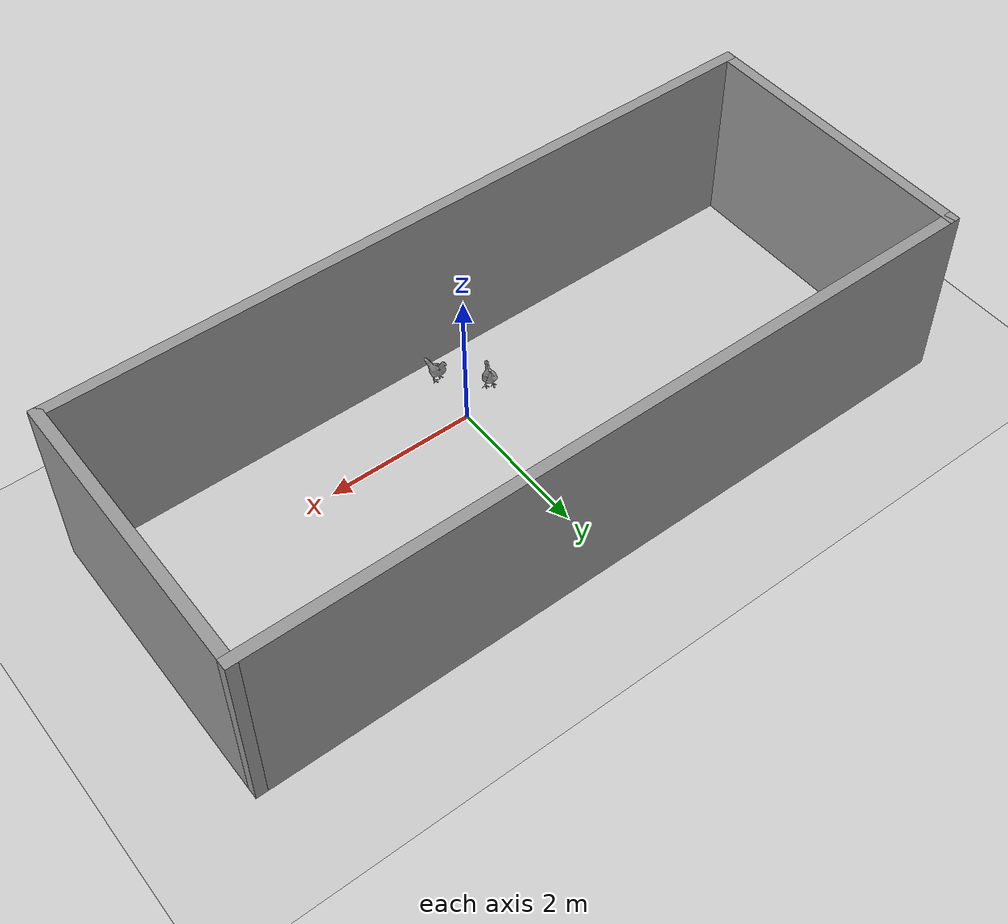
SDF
<sdf version="1.7">
 <world name="default">
  <model name="ground_plane">
   <static>1</static>
   <link name="link">
    <collision name="collision">
     <geometry><plane><normal>0 0 1</normal><size>100 100</size></plane></geometry>
     <surface><friction><ode><mu>100</mu><mu2>50</mu2></ode></friction></surface>
    </collision>
    <visual name="visual">
     <cast_shadows>0</cast_shadows>
     <geometry><plane><normal>0 0 1</normal><size>100 100</size></plane></geometry>
     <material>
      <script><uri>file://media/materials/scripts/gazebo.material</uri><name>Gazebo/Grey</name></script>
     </material>
    </visual>
   </link>
  </model>
  <model name="Stall4x10">
   <pose>1.16004 0.83872 0 0 -0 0</pose>
   <link name="Wall_6">
    <collision name="Wall_6_Collision">
     <geometry><box><size>4 0.15 2.5</size></box></geometry>
     <pose>0 0 1.25 0 -0 0</pose>
    </collision>
    <visual name="Wall_6_Visual">
     <pose>0 0 1.25 0 -0 0</pose>
     <geometry><box><size>4 0.15 2.5</size></box></geometry>
     <material>
      <script><uri>file://media/materials/scripts/gazebo.material</uri><name>Gazebo/Grey</name></script>
      <ambient>1 1 1 1</ambient>
     </material>
     <meta><layer>0</layer></meta>
    </visual>
    <pose>-6.2376 -0 0 0 -0 -1.5708</pose>
   </link>
   <link name="Wall_7">
    <collision name="Wall_7_Collision">
     <geometry><box><size>10 0.15 2.5</size></box></geometry>
     <pose>0 0 1.25 0 -0 0</pose>
    </collision>
    <visual name="Wall_7_Visual">
     <pose>0 0 1.25 0 -0 0</pose>
     <geometry><box><size>10 0.15 2.5</size></box></geometry>
     <material>
      <script><uri>file://media/materials/scripts/gazebo.material</uri><name>Gazebo/Grey</name></script>
      <ambient>1 1 1 1</ambient>
     </material>
     <meta><layer>0</layer></meta>
    </visual>
    <pose>-1.3126 -1.925 0 0 -0 0</pose>
   </link>
   <link name="Wall_8">
    <collision name="Wall_8_Collision">
     <geometry><box><size>4 0.15 2.5</size></box></geometry>
     <pose>0 0 1.25 0 -0 0</pose>
    </collision>
    <visual name="Wall_8_Visual">
     <pose>0 0 1.25 0 -0 0</pose>
     <geometry><box><size>4 0.15 2.5</size></box></geometry>
     <material>
      <script><uri>file://media/materials/scripts/gazebo.material</uri><name>Gazebo/Grey</name></script>
      <ambient>1 1 1 1</ambient>
     </material>
     <meta><layer>0</layer></meta>
    </visual>
    <pose>3.6124 -0 0 0 -0 1.5708</pose>
   </link>
   <link name="Wall_9">
    <collision name="Wall_9_Collision">
     <geometry><box><size>10 0.15 2.5</size></box></geometry>
     <pose>0 0 1.25 0 -0 0</pose>
    </collision>
    <visual name="Wall_9_Visual">
     <pose>0 0 1.25 0 -0 0</pose>
     <geometry><box><size>10 0.15 2.5</size></box></geometry>
     <material>
      <script><uri>file://media/materials/scripts/gazebo.material</uri><name>Gazebo/Grey</name></script>
      <ambient>1 1 1 1</ambient>
     </material>
     <meta><layer>0</layer></meta>
    </visual>
    <pose>-1.3126 1.925 0 0 -0 3.14159</pose>
   </link>
   <static>1</static>
  </model>
  <model name="model_final">
   <model name="model_final">
    <static>1</static>
    <link name="link_0">
     <inertial>
      <mass>1</mass>
      <inertia>
       <ixx>0.166667</ixx>
       <ixy>0</ixy>
       <ixz>0</ixz>
       <iyy>0.166667</iyy>
       <iyz>0</iyz>
       <izz>0.166667</izz>
      </inertia>
     </inertial>
     <visual name="visual">
      <geometry><mesh><uri>/workspaces/workspace/chicken.stl</uri><scale>1 1 1</scale></mesh></geometry>
      <material>
       <lighting>1</lighting>
       <script><uri>file://media/materials/scripts/gazebo.material</uri><name>Gazebo/Grey</name></script>
       <shader type="pixel"/>
      </material>
     </visual>
     <collision name="collision">
      <geometry><mesh><uri>/workspaces/workspace/chicken.stl</uri><scale>1 1 1</scale></mesh></geometry>
      <surface>
       <friction>
        <ode><mu>1</mu><mu2>1</mu2><fdir1>0 0 0</fdir1><slip1>0</slip1><slip2>0</slip2></ode>
        <torsional>
         <coefficient>1</coefficient>
         <patch_radius>0</patch_radius>
         <surface_radius>0</surface_radius>
         <use_patch_radius>1</use_patch_radius>
         <ode><slip>0</slip></ode>
        </torsional>
       </friction>
       <bounce><restitution_coefficient>0</restitution_coefficient><threshold>1e+06</threshold></bounce>
       <contact>
        <collide_without_contact>0</collide_without_contact>
        <collide_without_contact_bitmask>1</collide_without_contact_bitmask>
        <collide_bitmask>1</collide_bitmask>
        <ode>
         <soft_cfm>0</soft_cfm>
         <soft_erp>0.2</soft_erp>
         <kp>1e+13</kp>
         <kd>1</kd>
         <max_vel>0.01</max_vel>
         <min_depth>0</min_depth>
        </ode>
        <bullet>
         <split_impulse>1</split_impulse>
         <split_impulse_penetration_threshold>-0.01</split_impulse_penetration_threshold>
         <soft_cfm>0</soft_cfm>
         <soft_erp>0.2</soft_erp>
         <kp>1e+13</kp>
         <kd>1</kd>
        </bullet>
       </contact>
      </surface>
     </collision>
    </link>
    <static>0</static>
    <pose>-1.31547 0.835308 -1e-06 0 -0 0</pose>
   </model>
   <static>0</static>
   <pose>1.8513 -0.52505 0.812744 0 -0 0.347644</pose>
  </model>
  <model name="model_final_1">
   <model name="model_final">
    <static>1</static>
    <link name="link_0">
     <inertial>
      <mass>1</mass>
      <inertia>
       <ixx>0.166667</ixx>
       <ixy>0</ixy>
       <ixz>0</ixz>
       <iyy>0.166667</iyy>
       <iyz>0</iyz>
       <izz>0.166667</izz>
      </inertia>
     </inertial>
     <visual name="visual">
      <geometry><mesh><uri>/workspaces/workspace/chicken.stl</uri><scale>1 1 1</scale></mesh></geometry>
      <material>
       <lighting>1</lighting>
       <script><uri>file://media/materials/scripts/gazebo.material</uri><name>Gazebo/Grey</name></script>
       <shader type="pixel"/>
      </material>
     </visual>
     <collision name="collision">
      <geometry><mesh><uri>/workspaces/workspace/chicken.stl</uri><scale>1 1 1</scale></mesh></geometry>
      <surface>
       <friction>
        <ode><mu>1</mu><mu2>1</mu2><fdir1>0 0 0</fdir1><slip1>0</slip1><slip2>0</slip2></ode>
        <torsional>
         <coefficient>1</coefficient>
         <patch_radius>0</patch_radius>
         <surface_radius>0</surface_radius>
         <use_patch_radius>1</use_patch_radius>
         <ode><slip>0</slip></ode>
        </torsional>
       </friction>
       <bounce><restitution_coefficient>0</restitution_coefficient><threshold>1e+06</threshold></bounce>
       <contact>
        <collide_without_contact>0</collide_without_contact>
        <collide_without_contact_bitmask>1</collide_without_contact_bitmask>
        <collide_bitmask>1</collide_bitmask>
        <ode>
         <soft_cfm>0</soft_cfm>
         <soft_erp>0.2</soft_erp>
         <kp>1e+13</kp>
         <kd>1</kd>
         <max_vel>0.01</max_vel>
         <min_depth>0</min_depth>
        </ode>
        <bullet>
         <split_impulse>1</split_impulse>
         <split_impulse_penetration_threshold>-0.01</split_impulse_penetration_threshold>
         <soft_cfm>0</soft_cfm>
         <soft_erp>0.2</soft_erp>
         <kp>1e+13</kp>
         <kd>1</kd>
        </bullet>
       </contact>
      </surface>
     </collision>
    </link>
    <static>0</static>
    <pose>-1.31547 0.835308 -1e-06 0 -0 0</pose>
   </model>
   <static>0</static>
   <pose>0.7124 -1.01548 0.818254 0 0 -0.431359</pose>
  </model>
 </world>
</sdf>
